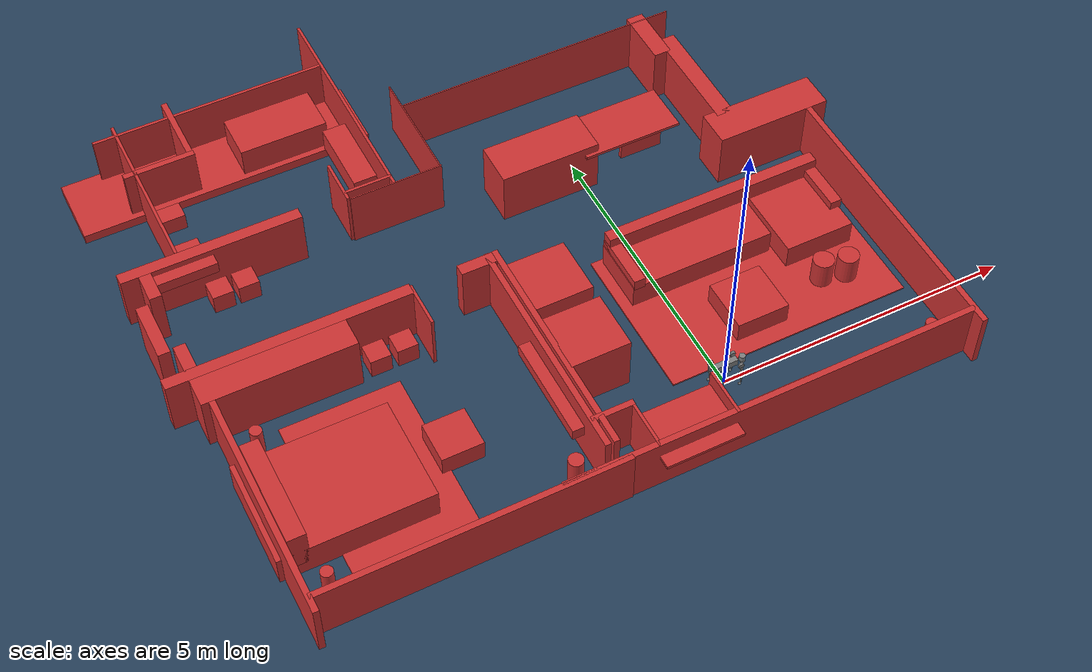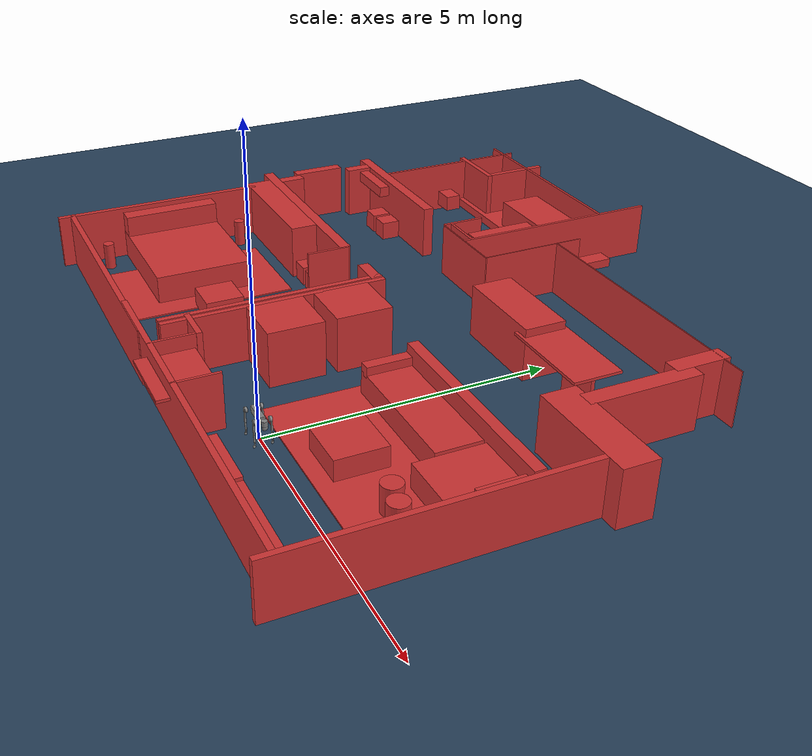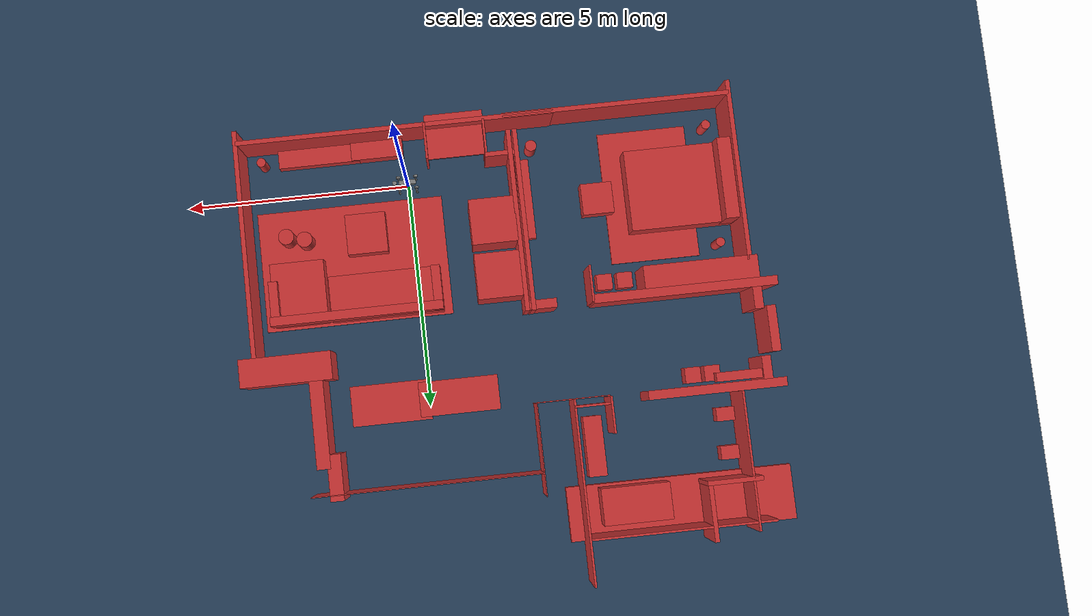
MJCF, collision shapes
<mujoco model="go2 scene">
  <include file="go2.xml" />
  <statistic center="0 0 0.1" extent="0.8" />

  <visual>
    <headlight diffuse="0.6 0.6 0.6" ambient="0.3 0.3 0.3" specular="0 0 0" />
    <rgba haze="0.15 0.25 0.35 1" />
    <global azimuth="-130" elevation="-20" />
    <map znear="0.01" zfar="100"/>
  </visual>

  <asset>
    <texture type="skybox" builtin="gradient" rgb1="0.3 0.5 0.7" rgb2="0 0 0" width="512" height="3072" />
    <texture type="2d" name="groundplane" builtin="checker" mark="edge" rgb1="0.2 0.3 0.4" rgb2="0.1 0.2 0.3" markrgb="0.8 0.8 0.8" width="300" height="300" />
    <material name="groundplane" texture="groundplane" texuniform="true" texrepeat="5 5" reflectance="0.2" />
  <hfield name="perlin_hfield" size="1.0 0.75 0.2 0.2" file="../height_field.png" /><hfield name="image_hfield" size="1.0 1.0 0.02 0.1" file="../unitree_hfield.png" /></asset>

  <worldbody>
    <light pos="0 0 1.5" dir="0 0 -1" directional="true" />
    <geom name="floor" pos="0 0.0 0.01" size="0 0 0.01" type="plane" material="groundplane" />
<geom name="Box0" type="box" size="0.05 2.5 0.5" pos="3.65 1.1 0.5" euler="0.0 0.0 0.0" rgba="0.8 0.2 0.2 1"/>
<geom name="Box1" type="box" size="0.05 3.5 0.5" pos="0.15 -1.12 0.5" euler="0.0 0.0 1.570796" rgba="0.8 0.2 0.2 1"/>
<geom name="Box2" type="box" size="0.2 0.91 0.2" pos="1.94 -0.86 0.05" euler="0.0 0.0 1.570796" rgba="0.8 0.2 0.2 1"/>
<geom name="Box3" type="box" size="0.2 0.585 0.2" pos="0.62 -0.86 0.11" euler="0.0 0.0 1.570796" rgba="0.8 0.2 0.2 1"/>
<geom name="Box4" type="box" size="0.4 0.025 0.5" pos="-0.5 -0.76 0.5" euler="0.0 0.0 1.570796" rgba="0.8 0.2 0.2 1"/>
<geom name="Box5" type="box" size="0.4 0.025 0.5" pos="-1.8 -0.76 0.5" euler="0.0 0.0 1.570796" rgba="0.8 0.2 0.2 1"/>
<geom name="Box6" type="box" size="0.35 0.05 0.5" pos="-2.12 -0.31 0.5" euler="0.0 0.0 -0.0" rgba="0.8 0.2 0.2 1"/>
<geom name="Box7" type="box" size="2.0 0.05 0.5" pos="-2.32 1.19 0.5" euler="0.0 0.0 1.570796" rgba="0.8 0.2 0.2 1"/>
<geom name="Box8" type="box" size="1.0 0.01 0.5" pos="-2.3 6.19 0.5" euler="0.0 0.0 1.570796" rgba="0.8 0.2 0.2 1"/>
<geom name="Box9" type="box" size="2.5 0.01 0.5" pos="0.2 6.69 0.5" euler="0.0 0.0 3.141593" rgba="0.8 0.2 0.2 1"/>
<geom name="Box10" type="box" size="0.5 0.15 0.5" pos="2.14 6.32 0.5" euler="0.0 0.0 -1.570796" rgba="0.8 0.2 0.2 1"/>
<geom name="Box11" type="box" size="0.31 1.0 0.5" pos="3.0 3.91 0.5" euler="0.0 0.0 -1.570796" rgba="0.8 0.2 0.2 1"/>
<geom name="Box12" type="box" size="1.0 0.15 0.5" pos="2.37 5.12 0.5" euler="0.0 0.0 -1.570796" rgba="0.8 0.2 0.2 1"/>
<geom name="Box13" type="box" size="0.8 0.01 0.5" pos="-3.08 5.19 0.5" euler="0.0 0.0 3.141593" rgba="0.8 0.2 0.2 1"/>
<geom name="Box14" type="box" size="1.5 0.1 0.5" pos="-6.19 5.285 0.5" euler="0.0 0.0 3.141593" rgba="0.8 0.2 0.2 1"/>
<geom name="Box15" type="box" size="0.4 0.025 0.5" pos="-3.9 5.61 0.5" euler="0.0 0.0 -1.570796" rgba="0.8 0.2 0.2 1"/>
<geom name="Box16" type="box" size="1.5 0.025 0.5" pos="-6.72 6.89 0.5" euler="0.0 0.0 -1.570796" rgba="0.8 0.2 0.2 1"/>
<geom name="Box17" type="box" size="2.0 0.025 0.5" pos="-5.12 8.19 0.5" euler="0.0 0.0 -0.0" rgba="0.8 0.2 0.2 1"/>
<geom name="Box18" type="box" size="2.0 0.025 0.5" pos="-3.11 7.19 0.5" euler="0.0 0.0 1.570796" rgba="0.8 0.2 0.2 1"/>
<geom name="Box19" type="box" size="0.65 0.2 0.2" pos="-3.45 6.24 0.65" euler="0.0 0.0 -1.570796" rgba="0.8 0.2 0.2 1"/>
<geom name="Box20" type="box" size="0.4 0.025 0.5" pos="-3.5 5.36 0.5" euler="0.0 0.0 -0.0" rgba="0.8 0.2 0.2 1"/>
<geom name="Box21" type="box" size="0.2 0.15 0.15" pos="-6.42 5.86 0.3" euler="0.0 0.0 -0.0" rgba="0.8 0.2 0.2 1"/>
<geom name="Box22" type="box" size="0.2 0.15 0.15" pos="-6.42 6.7 0.3" euler="0.0 0.0 -0.0" rgba="0.8 0.2 0.2 1"/>
<geom name="Box23" type="box" size="0.6 0.05 0.5" pos="-6.32 7.27 0.5" euler="0.0 0.0 -0.0" rgba="0.8 0.2 0.2 1"/>
<geom name="Box24" type="box" size="0.6 0.05 0.5" pos="-5.78 7.92 0.5" euler="0.0 0.0 -1.570796" rgba="0.8 0.2 0.2 1"/>
<geom name="Box25" type="box" size="0.6 2.5 0.1" pos="-5.28 7.71 0.06" euler="0.0 0.0 -1.570796" rgba="0.8 0.2 0.2 1"/>
<geom name="Box26" type="box" size="0.4 0.75 0.25" pos="-4.23 7.57 0.46" euler="0.0 0.0 -1.570796" rgba="0.8 0.2 0.2 1"/>
<geom name="Box27" type="box" size="0.5 0.1 0.1" pos="-6.7 5.05 0.84" euler="0.0 0.0 3.141593" rgba="0.8 0.2 0.2 1"/>
<geom name="Box28" type="box" size="0.25 0.1 0.5" pos="-7.3 4.94 0.5" euler="0.0 0.0 1.570796" rgba="0.8 0.2 0.2 1"/>
<geom name="Box29" type="box" size="0.25 0.1 0.5" pos="-7.3 3.42 0.5" euler="0.0 0.0 1.570796" rgba="0.8 0.2 0.2 1"/>
<geom name="Box30" type="box" size="0.5 0.1 0.5" pos="-7.55 4.12 0.5" euler="0.0 0.0 1.570796" rgba="0.8 0.2 0.2 1"/>
<geom name="Box31" type="box" size="2.0 0.1 0.5" pos="-5.77 3.09 0.5" euler="0.0 0.0 -0.0" rgba="0.8 0.2 0.2 1"/>
<geom name="Box32" type="box" size="0.4 0.025 0.5" pos="-3.76 2.75 0.5" euler="0.0 0.0 -1.570796" rgba="0.8 0.2 0.2 1"/>
<geom name="Box33" type="box" size="0.3 0.1 0.5" pos="-2.67 3.08 0.5" euler="0.0 0.0 0.0" rgba="0.8 0.2 0.2 1"/>
<geom name="Box34" type="box" size="2.0 0.05 0.5" pos="-2.46 1.19 0.5" euler="0.0 0.0 1.570796" rgba="0.8 0.2 0.2 1"/>
<geom name="Box35" type="box" size="2.0 0.05 0.5" pos="-7.23 0.59 0.5" euler="0.0 0.0 1.570796" rgba="0.8 0.2 0.2 1"/>
<geom name="Box36" type="box" size="2.5 0.05 0.5" pos="-4.73 -1.14 0.5" euler="0.0 0.0 -0.0" rgba="0.8 0.2 0.2 1"/>
<geom name="Box37" type="box" size="1.25 0.25 0.5" pos="-6.15 2.74 0.5" euler="0.0 0.0 0.0" rgba="0.8 0.2 0.2 1"/>
<geom name="Box38" type="box" size="0.175 0.175 0.175" pos="-4.58 2.68 0.22" euler="0.0 0.0 0.0" rgba="0.8 0.2 0.2 1"/>
<geom name="Box39" type="box" size="0.175 0.175 0.175" pos="-4.13 2.68 0.22" euler="0.0 0.0 0.0" rgba="0.8 0.2 0.2 1"/>
<geom name="Box40" type="box" size="0.35 0.35 0.35" pos="-4.19 0.78 0.01" euler="0.0 0.0 0.0" rgba="0.8 0.2 0.2 1"/>
<geom name="Box41" type="box" size="1.25 0.9 0.35" pos="-6.11 0.73 0.18" euler="0.0 0.0 0.0" rgba="0.8 0.2 0.2 1"/>
<geom name="Box42" type="box" size="0.175 0.175 0.175" pos="-5.83 4.94 0.22" euler="0.0 0.0 0.0" rgba="0.8 0.2 0.2 1"/>
<geom name="Box43" type="box" size="0.175 0.175 0.175" pos="-6.26 4.94 0.22" euler="0.0 0.0 0.0" rgba="0.8 0.2 0.2 1"/>
<geom name="Box44" type="box" size="0.15 0.885 0.1" pos="-2.56 0.7 0.58" euler="0.0 0.0 0.0" rgba="0.8 0.2 0.2 1"/>
<geom name="Box45" type="box" size="0.45 0.45 0.35" pos="1.03 1.03 0.04" euler="0.0 0.0 0.0" rgba="0.8 0.2 0.2 1"/>
<geom name="Box46" type="box" size="2.1 1.35 0.025" pos="1.38 1.64 -0.004" euler="0.0 0.0 0.0" rgba="0.8 0.2 0.2 1"/>
<geom name="Box47" type="box" size="0.7 0.6 0.25" pos="2.64 2.22 0.19" euler="0.0 0.0 1.570796" rgba="0.8 0.2 0.2 1"/>
<geom name="Box48" type="box" size="0.5 1.25 0.25" pos="0.72 2.43 0.19" euler="0.0 0.0 1.570796" rgba="0.8 0.2 0.2 1"/>
<geom name="Box49" type="box" size="0.5 0.1 0.1" pos="-0.42 2.43 0.49" euler="0.0 0.0 1.570796" rgba="0.8 0.2 0.2 1"/>
<geom name="Box50" type="box" size="1.9 0.1 0.2" pos="1.38 2.83 0.55" euler="0.0 0.0 3.141593" rgba="0.8 0.2 0.2 1"/>
<geom name="Box51" type="box" size="0.5 0.1 0.1" pos="3.18 2.43 0.49" euler="0.0 0.0 1.570796" rgba="0.8 0.2 0.2 1"/>
<geom name="Box52" type="box" size="0.5 0.5 0.5" pos="-1.79 1.15 0.5" euler="0.0 0.0 0.0" rgba="0.8 0.2 0.2 1"/>
<geom name="Box53" type="box" size="0.5 0.5 0.5" pos="-1.79 2.35 0.5" euler="0.0 0.0 0.0" rgba="0.8 0.2 0.2 1"/>
<geom name="Box54" type="box" size="0.86 0.375 0.5" pos="-0.66 4.86 0.45" euler="0.0 0.0 3.141593" rgba="0.8 0.2 0.2 1"/>
<geom name="Box55" type="box" size="0.375 0.035 0.5" pos="1.2 4.85 0.28" euler="0.0 0.0 3.141593" rgba="0.8 0.2 0.2 1"/>
<geom name="Box56" type="box" size="0.86 0.435 0.025" pos="0.82 4.86 0.78" euler="0.0 0.0 3.141593" rgba="0.8 0.2 0.2 1"/>
<geom name="Cylinder57"  type="cylinder" size="0.1 0.25" pos="-6.78 2.07 0.25" rgba="0.8 0.2 0.2 1"/>
<geom name="Cylinder58"  type="cylinder" size="0.1 0.25" pos="-6.78 -0.6 0.25" rgba="0.8 0.2 0.2 1"/>
<geom name="Cylinder59"  type="cylinder" size="0.125 0.25" pos="-2.83 -0.53 0.25" rgba="0.8 0.2 0.2 1"/>
<geom name="Box60" type="box" size="0.15 0.9 0.35" pos="-7.01 0.73 0.57" euler="0.0 0.0 0.0" rgba="0.8 0.2 0.2 1"/>
<geom name="Box61" type="box" size="1.0 1.5 0.025" pos="-5.4 0.76 -0.004" euler="0.0 0.0 0.0" rgba="0.8 0.2 0.2 1"/>
<geom name="Cylinder62"  type="cylinder" size="0.1 0.25" pos="3.2 -0.78 0.25" rgba="0.8 0.2 0.2 1"/>
<geom name="Cylinder63"  type="cylinder" size="0.175 0.25" pos="2.8 0.95 0.25" rgba="0.8 0.2 0.2 1"/>
<geom name="Cylinder64"  type="cylinder" size="0.175 0.25" pos="2.4 1.05 0.25" rgba="0.8 0.2 0.2 1"/>
<geom name="Box65" type="box" size="0.65 0.5 0.025" pos="-1.16 -0.89 0.72" euler="0.0 0.0 0.0" rgba="0.8 0.2 0.2 1"/>
    </worldbody>
</mujoco>

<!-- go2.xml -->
<mujoco model="go2">
  <compiler angle="radian" meshdir="assets" autolimits="true" />

  <option cone="elliptic" impratio="100" />

  <default>
    <default class="go2">
      <geom friction="0.4" margin="0.001" condim="1"/>
      <joint axis="0 1 0" damping="0.1" armature="0.01" frictionloss="0.2"/>
      <motor ctrlrange="-23.7 23.7"/>
      <default class="abduction">
        <joint axis="1 0 0" range="-1.0472 1.0472"/>
      </default>
      <default class="hip">
        <default class="front_hip">
          <joint range="-1.5708 3.4907"/>
        </default>
        <default class="back_hip">
          <joint range="-0.5236 4.5379"/>
        </default>
      </default>
      <default class="knee">
        <joint range="-2.7227 -0.83776"/>
        <motor ctrlrange="-45.43 45.43"/>
      </default>
      <default class="visual">
        <geom type="mesh" contype="0" conaffinity="0" group="2"/>
      </default>
      <default class="collision">
        <geom group="3"/>
        <default class="foot">
          <geom size="0.022" pos="-0.002 0 -0.213" priority="1" condim="6"
            friction="0.4 0.02 0.01"/>
        </default>
      </default>
    </default>
  </default>

  <asset>
    <material name="metal" rgba=".9 .95 .95 1" />
    <material name="black" rgba="0 0 0 1" />
    <material name="white" rgba="1 1 1 1" />
    <material name="gray" rgba="0.671705 0.692426 0.774270 1" />

    <mesh file="base_0.obj" />
    <mesh file="base_1.obj" />
    <mesh file="base_2.obj" />
    <mesh file="base_3.obj" />
    <mesh file="base_4.obj" />
    <mesh file="hip_0.obj" />
    <mesh file="hip_1.obj" />
    <mesh file="thigh_0.obj" />
    <mesh file="thigh_1.obj" />
    <mesh file="thigh_mirror_0.obj" />
    <mesh file="thigh_mirror_1.obj" />
    <mesh file="calf_0.obj" />
    <mesh file="calf_1.obj" />
    <mesh file="calf_mirror_0.obj" />
    <mesh file="calf_mirror_1.obj" />
    <mesh file="foot.obj" />
  </asset>

  <worldbody>
    <body name="base_link" pos="0 0 0.445" childclass="go2">
      <inertial pos="0.021112 0 -0.005366" quat="-0.000543471 0.713435 -0.00173769 0.700719"
        mass="6.921"
        diaginertia="0.107027 0.0980771 0.0244531" />
      <freejoint />
      <geom mesh="base_0" material="black" class="visual" />
      <geom mesh="base_1" material="black" class="visual" />
      <geom mesh="base_2" material="black" class="visual" />
      <geom mesh="base_3" material="white" class="visual" />
      <geom mesh="base_4" material="gray" class="visual" />
      <geom size="0.1881 0.04675 0.057" type="box" class="collision" />
      <geom size="0.05 0.045" pos="0.285 0 0.01" type="cylinder" class="collision" />
      <geom size="0.047" pos="0.293 0 -0.06" class="collision" />
      <site name="imu" pos="-0.02557 0 0.04232" />

      <body name="FL_hip" pos="0.1934 0.0465 0">
        <inertial pos="-0.0054 0.00194 -0.000105" quat="0.497014 0.499245 0.505462 0.498237"
          mass="0.678"
          diaginertia="0.00088403 0.000596003 0.000479967" />
        <joint name="FL_hip_joint" class="abduction" />
        <geom mesh="hip_0" material="metal" class="visual" />
        <geom mesh="hip_1" material="gray" class="visual" />
        <geom size="0.046 0.02" pos="0 0.08 0" quat="1 1 0 0" type="cylinder" class="collision" />
        <body name="FL_thigh" pos="0 0.0955 0">
          <inertial pos="-0.00374 -0.0223 -0.0327" quat="0.829533 0.0847635 -0.0200632 0.551623"
            mass="1.152"
            diaginertia="0.00594973 0.00584149 0.000878787" />
          <joint name="FL_thigh_joint" class="front_hip" />
          <geom mesh="thigh_0" material="metal" class="visual" />
          <geom mesh="thigh_1" material="gray" class="visual" />
          <geom size="0.1065 0.01225 0.017" pos="0 0 -0.1065" quat="0.707107 0 0.707107 0"
            type="box" class="collision" />
          <body name="FL_calf" pos="0 0 -0.213">
            <inertial pos="0.00629595 -0.000622121 -0.141417"
              quat="0.710672 0.00154099 -0.00450087 0.703508"
              mass="0.241352" diaginertia="0.0014901 0.00146356 5.31397e-05" />
            <joint name="FL_calf_joint" class="knee" />
            <geom mesh="calf_0" material="gray" class="visual" />
            <geom mesh="calf_1" material="black" class="visual" />
            <geom size="0.012 0.06" pos="0.008 0 -0.06" quat="0.994493 0 -0.104807 0"
              type="cylinder" class="collision" />
            <geom size="0.011 0.0325" pos="0.02 0 -0.148" quat="0.999688 0 0.0249974 0"
              type="cylinder" class="collision" />
            <geom pos="0 0 -0.213" mesh="foot" class="visual" material="black" />
            <geom name="FL" class="foot" />
            <body name="FL_foot" pos="0 0 -0.213" />
          </body>
        </body>
      </body>
      <body name="FR_hip" pos="0.1934 -0.0465 0">
        <inertial pos="-0.0054 -0.00194 -0.000105" quat="0.498237 0.505462 0.499245 0.497014"
          mass="0.678"
          diaginertia="0.00088403 0.000596003 0.000479967" />
        <joint name="FR_hip_joint" class="abduction" />
        <geom mesh="hip_0" material="metal" class="visual" quat="4.63268e-05 1 0 0" />
        <geom mesh="hip_1" material="gray" class="visual" quat="4.63268e-05 1 0 0" />
        <geom size="0.046 0.02" pos="0 -0.08 0" quat="0.707107 0.707107 0 0" type="cylinder"
          class="collision" />
        <body name="FR_thigh" pos="0 -0.0955 0">
          <inertial pos="-0.00374 0.0223 -0.0327" quat="0.551623 -0.0200632 0.0847635 0.829533"
            mass="1.152"
            diaginertia="0.00594973 0.00584149 0.000878787" />
          <joint name="FR_thigh_joint" class="front_hip" />
          <geom mesh="thigh_mirror_0" material="metal" class="visual" />
          <geom mesh="thigh_mirror_1" material="gray" class="visual" />
          <geom size="0.1065 0.01225 0.017" pos="0 0 -0.1065" quat="0.707107 0 0.707107 0"
            type="box" class="collision" />
          <body name="FR_calf" pos="0 0 -0.213">
            <inertial pos="0.00629595 0.000622121 -0.141417"
              quat="0.703508 -0.00450087 0.00154099 0.710672"
              mass="0.241352" diaginertia="0.0014901 0.00146356 5.31397e-05" />
            <joint name="FR_calf_joint" class="knee" />
            <geom mesh="calf_mirror_0" material="gray" class="visual" />
            <geom mesh="calf_mirror_1" material="black" class="visual" />
            <geom size="0.013 0.06" pos="0.01 0 -0.06" quat="0.995004 0 -0.0998334 0"
              type="cylinder" class="collision" />
            <geom size="0.011 0.0325" pos="0.02 0 -0.148" quat="0.999688 0 0.0249974 0"
              type="cylinder" class="collision" />
            <geom pos="0 0 -0.213" mesh="foot" class="visual" material="black" />
            <geom name="FR" class="foot" />
            <body name="FR_foot" pos="0 0 -0.213" />
          </body>
        </body>
      </body>
      <body name="RL_hip" pos="-0.1934 0.0465 0">
        <inertial pos="0.0054 0.00194 -0.000105" quat="0.505462 0.498237 0.497014 0.499245"
          mass="0.678"
          diaginertia="0.00088403 0.000596003 0.000479967" />
        <joint name="RL_hip_joint" class="abduction" />
        <geom mesh="hip_0" material="metal" class="visual" quat="4.63268e-05 0 1 0" />
        <geom mesh="hip_1" material="gray" class="visual" quat="4.63268e-05 0 1 0" />
        <geom size="0.046 0.02" pos="0 0.08 0" quat="0.707107 0.707107 0 0" type="cylinder"
          class="collision" />
        <body name="RL_thigh" pos="0 0.0955 0">
          <inertial pos="-0.00374 -0.0223 -0.0327" quat="0.829533 0.0847635 -0.0200632 0.551623"
            mass="1.152"
            diaginertia="0.00594973 0.00584149 0.000878787" />
          <joint name="RL_thigh_joint" class="back_hip" />
          <geom mesh="thigh_0" material="metal" class="visual" />
          <geom mesh="thigh_1" material="gray" class="visual" />
          <geom size="0.1065 0.01225 0.017" pos="0 0 -0.1065" quat="0.707107 0 0.707107 0"
            type="box" class="collision" />
          <body name="RL_calf" pos="0 0 -0.213">
            <inertial pos="0.00629595 -0.000622121 -0.141417"
              quat="0.710672 0.00154099 -0.00450087 0.703508"
              mass="0.241352" diaginertia="0.0014901 0.00146356 5.31397e-05" />
            <joint name="RL_calf_joint" class="knee" />
            <geom mesh="calf_0" material="gray" class="visual" />
            <geom mesh="calf_1" material="black" class="visual" />
            <geom size="0.013 0.06" pos="0.01 0 -0.06" quat="0.995004 0 -0.0998334 0"
              type="cylinder" class="collision" />
            <geom size="0.011 0.0325" pos="0.02 0 -0.148" quat="0.999688 0 0.0249974 0"
              type="cylinder" class="collision" />
            <geom pos="0 0 -0.213" mesh="foot" class="visual" material="black" />
            <geom name="RL" class="foot" />
            <body name="RL_foot" pos="0 0 -0.213" />
          </body>
        </body>
      </body>
      <body name="RR_hip" pos="-0.1934 -0.0465 0">
        <inertial pos="0.0054 -0.00194 -0.000105" quat="0.499245 0.497014 0.498237 0.505462"
          mass="0.678"
          diaginertia="0.00088403 0.000596003 0.000479967" />
        <joint name="RR_hip_joint" class="abduction" />
        <geom mesh="hip_0" material="metal" class="visual"
          quat="2.14617e-09 4.63268e-05 4.63268e-05 -1" />
        <geom mesh="hip_1" material="gray" class="visual"
          quat="2.14617e-09 4.63268e-05 4.63268e-05 -1" />
        <geom size="0.046 0.02" pos="0 -0.08 0" quat="0.707107 0.707107 0 0" type="cylinder"
          class="collision" />
        <body name="RR_thigh" pos="0 -0.0955 0">
          <inertial pos="-0.00374 0.0223 -0.0327" quat="0.551623 -0.0200632 0.0847635 0.829533"
            mass="1.152"
            diaginertia="0.00594973 0.00584149 0.000878787" />
          <joint name="RR_thigh_joint" class="back_hip" />
          <geom mesh="thigh_mirror_0" material="metal" class="visual" />
          <geom mesh="thigh_mirror_1" material="gray" class="visual" />
          <geom size="0.1065 0.01225 0.017" pos="0 0 -0.1065" quat="0.707107 0 0.707107 0"
            type="box" class="collision" />
          <body name="RR_calf" pos="0 0 -0.213">
            <inertial pos="0.00629595 0.000622121 -0.141417"
              quat="0.703508 -0.00450087 0.00154099 0.710672"
              mass="0.241352" diaginertia="0.0014901 0.00146356 5.31397e-05" />
            <joint name="RR_calf_joint" class="knee" />
            <geom mesh="calf_mirror_0" material="gray" class="visual" />
            <geom mesh="calf_mirror_1" material="black" class="visual" />
            <geom size="0.013 0.06" pos="0.01 0 -0.06" quat="0.995004 0 -0.0998334 0"
              type="cylinder" class="collision" />
            <geom size="0.011 0.0325" pos="0.02 0 -0.148" quat="0.999688 0 0.0249974 0"
              type="cylinder" class="collision" />
            <geom pos="0 0 -0.213" mesh="foot" class="visual" material="black" />
            <geom name="RR" class="foot" />
            <body name="RR_foot" pos="0 0 -0.213" />
          </body>
        </body>
      </body>
    </body>
  </worldbody>

  <actuator>
    <motor class="abduction" name="FR_hip" joint="FR_hip_joint" />
    <motor class="hip" name="FR_thigh" joint="FR_thigh_joint" />
    <motor class="knee" name="FR_calf" joint="FR_calf_joint" />
    <motor class="abduction" name="FL_hip" joint="FL_hip_joint" />
    <motor class="hip" name="FL_thigh" joint="FL_thigh_joint" />
    <motor class="knee" name="FL_calf" joint="FL_calf_joint" />
    <motor class="abduction" name="RR_hip" joint="RR_hip_joint" />
    <motor class="hip" name="RR_thigh" joint="RR_thigh_joint" />
    <motor class="knee" name="RR_calf" joint="RR_calf_joint" />
    <motor class="abduction" name="RL_hip" joint="RL_hip_joint" />
    <motor class="hip" name="RL_thigh" joint="RL_thigh_joint" />
    <motor class="knee" name="RL_calf" joint="RL_calf_joint" />
  </actuator>

  <sensor>
    <jointpos name="FR_hip_pos" joint="FR_hip_joint" />
    <jointpos name="FR_thigh_pos" joint="FR_thigh_joint" />
    <jointpos name="FR_calf_pos" joint="FR_calf_joint" />
    <jointpos name="FL_hip_pos" joint="FL_hip_joint" />
    <jointpos name="FL_thigh_pos" joint="FL_thigh_joint" />
    <jointpos name="FL_calf_pos" joint="FL_calf_joint" />
    <jointpos name="RR_hip_pos" joint="RR_hip_joint" />
    <jointpos name="RR_thigh_pos" joint="RR_thigh_joint" />
    <jointpos name="RR_calf_pos" joint="RR_calf_joint" />
    <jointpos name="RL_hip_pos" joint="RL_hip_joint" />
    <jointpos name="RL_thigh_pos" joint="RL_thigh_joint" />
    <jointpos name="RL_calf_pos" joint="RL_calf_joint" />

    <jointvel name="FR_hip_vel" joint="FR_hip_joint" />
    <jointvel name="FR_thigh_vel" joint="FR_thigh_joint" />
    <jointvel name="FR_calf_vel" joint="FR_calf_joint" />
    <jointvel name="FL_hip_vel" joint="FL_hip_joint" />
    <jointvel name="FL_thigh_vel" joint="FL_thigh_joint" />
    <jointvel name="FL_calf_vel" joint="FL_calf_joint" />
    <jointvel name="RR_hip_vel" joint="RR_hip_joint" />
    <jointvel name="RR_thigh_vel" joint="RR_thigh_joint" />
    <jointvel name="RR_calf_vel" joint="RR_calf_joint" />
    <jointvel name="RL_hip_vel" joint="RL_hip_joint" />
    <jointvel name="RL_thigh_vel" joint="RL_thigh_joint" />
    <jointvel name="RL_calf_vel" joint="RL_calf_joint" />

    <jointactuatorfrc name="FR_hip_torque" joint="FR_hip_joint" noise="0.01" />
    <jointactuatorfrc name="FR_thigh_torque" joint="FR_thigh_joint" noise="0.01" />
    <jointactuatorfrc name="FR_calf_torque" joint="FR_calf_joint" noise="0.01" />
    <jointactuatorfrc name="FL_hip_torque" joint="FL_hip_joint" noise="0.01" />
    <jointactuatorfrc name="FL_thigh_torque" joint="FL_thigh_joint" noise="0.01" />
    <jointactuatorfrc name="FL_calf_torque" joint="FL_calf_joint" noise="0.01" />
    <jointactuatorfrc name="RR_hip_torque" joint="RR_hip_joint" noise="0.01" />
    <jointactuatorfrc name="RR_thigh_torque" joint="RR_thigh_joint" noise="0.01" />
    <jointactuatorfrc name="RR_calf_torque" joint="RR_calf_joint" noise="0.01" />
    <jointactuatorfrc name="RL_hip_torque" joint="RL_hip_joint" noise="0.01" />
    <jointactuatorfrc name="RL_thigh_torque" joint="RL_thigh_joint" noise="0.01" />
    <jointactuatorfrc name="RL_calf_torque" joint="RL_calf_joint" noise="0.01" />

    <framequat name="imu_quat" objtype="site" objname="imu" />
    <gyro name="imu_gyro" site="imu" />
    <accelerometer name="imu_acc" site="imu" />

    <framepos name="frame_pos" objtype="site" objname="imu" />
    <framelinvel name="frame_vel" objtype="site" objname="imu" />
  </sensor>

  <keyframe>
    <key name="home" qpos="0 0 0.27 1 0 0 0 0 0.9 -1.8 0 0.9 -1.8 0 0.9 -1.8 0 0.9 -1.8"
      ctrl="0 0.9 -1.8 0 0.9 -1.8 0 0.9 -1.8 0 0.9 -1.8" />
  </keyframe>
</mujoco>
